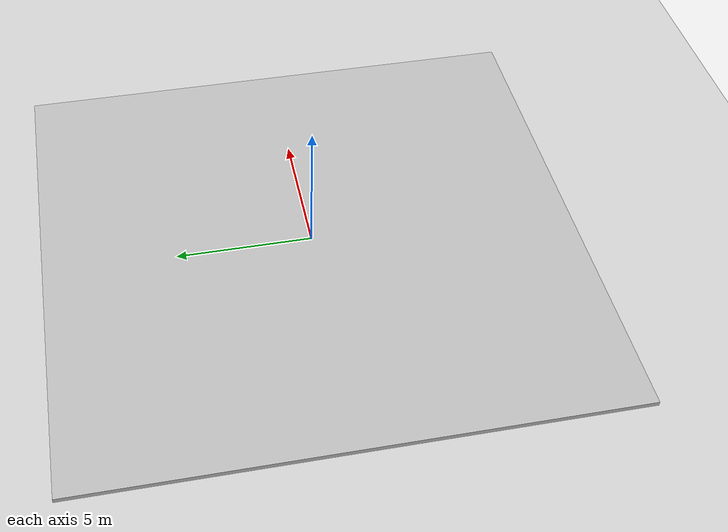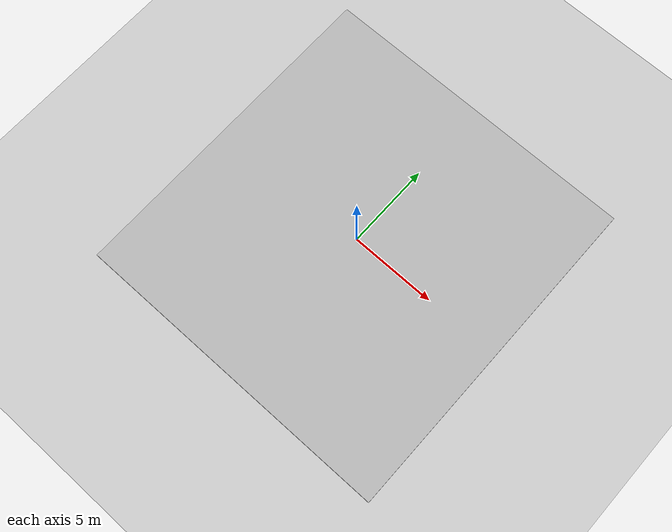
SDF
<sdf version="1.7">
 <world name="default">
  <light name="sun" type="directional">
   <pose>0 0 10 0 -0 0</pose>
   <diffuse>0.8 0.8 0.8 1</diffuse>
   <specular>0.2 0.2 0.2 1</specular>
   <attenuation>
    <range>1000</range>
    <constant>0.9</constant>
    <linear>0.01</linear>
    <quadratic>0.001</quadratic>
   </attenuation>
   <direction>-0.5 0.1 -0.9</direction>
   <spot><inner_angle>0</inner_angle><outer_angle>0</outer_angle><falloff>0</falloff></spot>
  </light>
  <model name="ground_plane">
   <static>1</static>
   <link name="link">
    <collision name="collision">
     <geometry><plane><normal>0 0 1</normal><size>100 100</size></plane></geometry>
     <surface>
      <contact><collide_bitmask>65535</collide_bitmask></contact>
      <friction><ode><mu>100</mu><mu2>50</mu2></ode></friction>
     </surface>
    </collision>
    <visual name="visual">
     <cast_shadows>0</cast_shadows>
     <geometry><plane><normal>0 0 1</normal><size>100 100</size></plane></geometry>
     <material>
      <script><uri>file://media/materials/scripts/gazebo.material</uri><name>Gazebo/Grey</name></script>
     </material>
    </visual>
   </link>
  </model>
  <gravity>0 0 -9.8</gravity>
  <magnetic_field>6e-06 2.3e-05 -4.2e-05</magnetic_field>
  <atmosphere type="adiabatic"/>
  <physics type="ode">
   <max_step_size>0.001</max_step_size>
   <real_time_factor>1</real_time_factor>
   <real_time_update_rate>1000</real_time_update_rate>
  </physics>
  <scene><ambient>0.4 0.4 0.4 1</ambient><background>0.7 0.7 0.7 1</background><shadows>1</shadows></scene>
  <audio><device>default</device></audio>
  <spherical_coordinates>
   <surface_model>EARTH_WGS84</surface_model>
   <latitude_deg>0</latitude_deg>
   <longitude_deg>0</longitude_deg>
   <elevation>0</elevation>
   <heading_deg>0</heading_deg>
  </spherical_coordinates>
  <light name="user_directional_light_0" type="directional">
   <pose>-13.2782 25.8107 1 0 -0 0</pose>
   <diffuse>0.5 0.5 0.5 1</diffuse>
   <specular>0.1 0.1 0.1 1</specular>
   <direction>0.1 0.1 -0.9</direction>
   <attenuation>
    <range>20</range>
    <constant>0.5</constant>
    <linear>0.01</linear>
    <quadratic>0.001</quadratic>
   </attenuation>
   <spot><inner_angle>0</inner_angle><outer_angle>0</outer_angle><falloff>0</falloff></spot>
  </light>
  <light name="user_directional_light_1" type="directional">
   <pose>-9.59762 -16.0529 1 0 -0 0</pose>
   <diffuse>0.5 0.5 0.5 1</diffuse>
   <specular>0.1 0.1 0.1 1</specular>
   <direction>0.1 0.1 -0.9</direction>
   <attenuation>
    <range>20</range>
    <constant>0.5</constant>
    <linear>0.01</linear>
    <quadratic>0.001</quadratic>
   </attenuation>
   <spot><inner_angle>0</inner_angle><outer_angle>0</outer_angle><falloff>0</falloff></spot>
  </light>
  <light name="user_directional_light_2" type="directional">
   <pose>10.1117 -16.3335 1 0 -0 0</pose>
   <diffuse>0.5 0.5 0.5 1</diffuse>
   <specular>0.1 0.1 0.1 1</specular>
   <direction>0.1 0.1 -0.9</direction>
   <attenuation>
    <range>20</range>
    <constant>0.5</constant>
    <linear>0.01</linear>
    <quadratic>0.001</quadratic>
   </attenuation>
   <spot><inner_angle>0</inner_angle><outer_angle>0</outer_angle><falloff>0</falloff></spot>
  </light>
  <light name="user_directional_light_3" type="directional">
   <pose>13.1178 24.1074 1 0 -0 0</pose>
   <diffuse>0.5 0.5 0.5 1</diffuse>
   <specular>0.1 0.1 0.1 1</specular>
   <direction>0.1 0.1 -0.9</direction>
   <attenuation>
    <range>20</range>
    <constant>0.5</constant>
    <linear>0.01</linear>
    <quadratic>0.001</quadratic>
   </attenuation>
   <spot><inner_angle>0</inner_angle><outer_angle>0</outer_angle><falloff>0</falloff></spot>
  </light>
  <light name="user_directional_light_4" type="directional">
   <pose>10.9172 24.9137 1 0 -0 0</pose>
   <diffuse>0.5 0.5 0.5 1</diffuse>
   <specular>0.1 0.1 0.1 1</specular>
   <direction>0.1 0.1 -0.9</direction>
   <attenuation>
    <range>20</range>
    <constant>0.5</constant>
    <linear>0.01</linear>
    <quadratic>0.001</quadratic>
   </attenuation>
   <spot><inner_angle>0</inner_angle><outer_angle>0</outer_angle><falloff>0</falloff></spot>
  </light>
  <light name="user_directional_light_5" type="directional">
   <pose>-8.6907 9.61573 1 0 -0 0</pose>
   <diffuse>0.5 0.5 0.5 1</diffuse>
   <specular>0.1 0.1 0.1 1</specular>
   <direction>0.1 0.1 -0.9</direction>
   <attenuation>
    <range>20</range>
    <constant>0.5</constant>
    <linear>0.01</linear>
    <quadratic>0.001</quadratic>
   </attenuation>
   <spot><inner_angle>0</inner_angle><outer_angle>0</outer_angle><falloff>0</falloff></spot>
  </light>
  <light name="user_directional_light_6" type="directional">
   <pose>9.90043 9.5086 1 0 -0 0</pose>
   <diffuse>0.5 0.5 0.5 1</diffuse>
   <specular>0.1 0.1 0.1 1</specular>
   <direction>0.1 0.1 -0.9</direction>
   <attenuation>
    <range>20</range>
    <constant>0.5</constant>
    <linear>0.01</linear>
    <quadratic>0.001</quadratic>
   </attenuation>
   <spot><inner_angle>0</inner_angle><outer_angle>0</outer_angle><falloff>0</falloff></spot>
  </light>
  <model name="maze">
   <pose>-0.053244 0.069894 0.084403 -9e-06 -0 -1.6e-05</pose>
   <link name="link">
    <inertial>
     <mass>100</mass>
     <inertia><ixx>16.6667</ixx><ixy>0</ixy><ixz>0</ixz><iyy>16.6667</iyy><iyz>0</iyz><izz>16.6667</izz></inertia>
    </inertial>
    <collision name="collision">
     <geometry><box><size>18.8846 19.5039 0.168978</size></box></geometry>
     <surface>
      <contact><ode><kp>1000000.0</kp><kd>1.0</kd></ode></contact>
      <bounce><restitution_coefficient>0</restitution_coefficient><threshold>1e-05</threshold></bounce>
      <friction>
       <ode><mu>100.0</mu><mu2>50.0</mu2><fdir1>0 0 0</fdir1></ode>
       <torsional><ode><slip>0</slip></ode></torsional>
      </friction>
     </surface>
    </collision>
    <visual name="visual">
     <geometry><box><size>18.8846 19.5039 0.168978</size></box></geometry>
     <material>
      <script>
       <name>maze/Diffuse</name>
       <uri>/home/utk/ros2_ws/src/my_rover/urdf/maze/materials/scripts</uri>
       <uri>/home/utk/ros2_ws/src/my_rover/urdf/maze/materials/textures</uri>
      </script>
     </material>
    </visual>
   </link>
  </model>
 </world>
</sdf>
